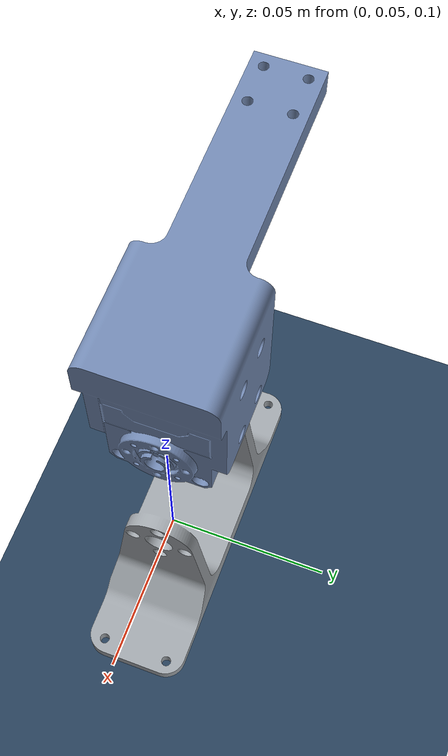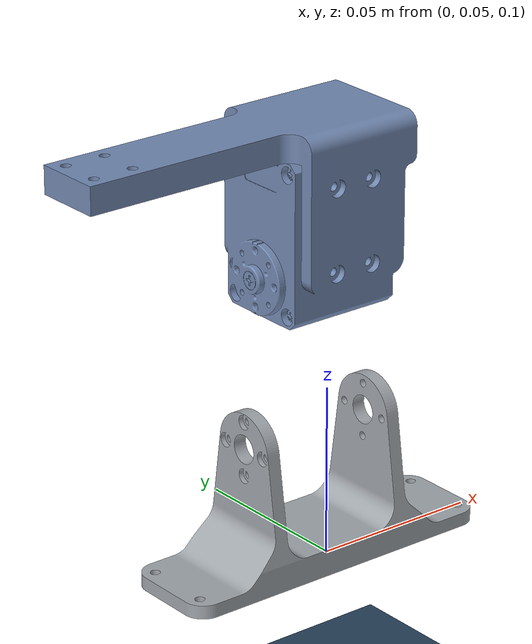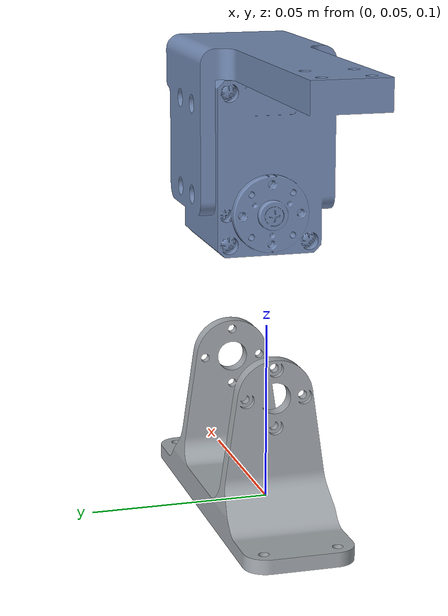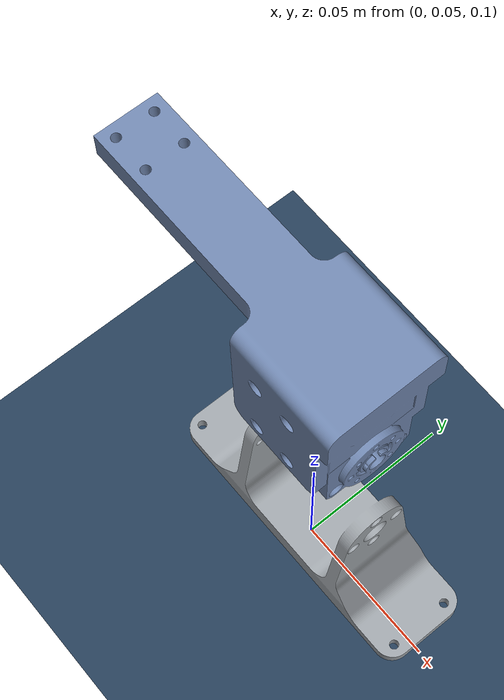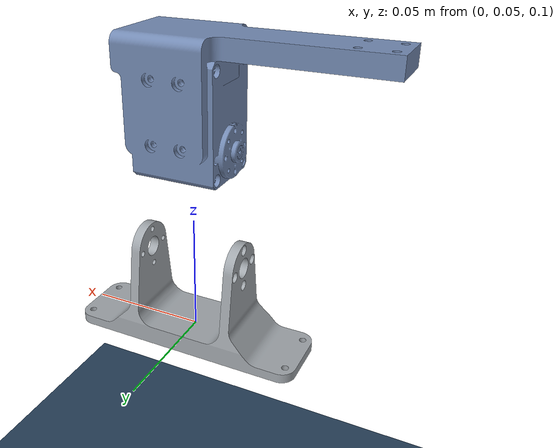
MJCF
<?xml version="1.0" ?>
<mujoco model="sysID_XC430_pos_fixed_scene">
  <include file="sysID_XC430_pos_fixed.xml"/>
  <statistic center="0 0 -0.05" extent="0.6"/>
  <visual>
    <headlight diffuse="0.6 0.6 0.6" ambient="0.3 0.3 0.3" specular="0 0 0"/>
    <rgba haze="0.15 0.25 0.35 1"/>
    <global azimuth="160" elevation="-20" offwidth="1280" offheight="720"/>
  </visual>
  <worldbody>
    <light pos="0 0 1.5" dir="0 0 -1" directional="true"/>
    <camera name="perspective" pos="0.7 -0.7 0.35" xyaxes="1 1 0 -1 1 3" mode="trackcom"/>
    <camera name="side" pos="0 -1 0.25" xyaxes="1 0 0 0 1 3" mode="trackcom"/>
    <camera name="top" pos="0 0 0.65" xyaxes="0 1 0 -1 0 0" mode="trackcom"/>
    <camera name="front" pos="1 0 0.25" xyaxes="0 1 0 -1 0 3" mode="trackcom"/>
    <geom name="floor" size="0 0 0.05" type="plane" material="groundplane" condim="3"/>
  </worldbody>
  <asset>
    <texture type="2d" name="groundplane" builtin="checker" mark="edge" rgb1="0.2 0.3 0.4" rgb2="0.1 0.2 0.3" markrgb="0.8 0.8 0.8" width="300" height="300"/>
    <material name="groundplane" texture="groundplane" texuniform="true" texrepeat="5 5" reflectance="0.0"/>
  </asset>
</mujoco>

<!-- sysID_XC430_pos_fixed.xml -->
<mujoco model="sysID_XC430">
  <compiler angle="radian" meshdir="assets" autolimits="true"/>
  <default>
    <default class="sysID_XC430">
      <joint frictionloss="0.1" armature="0.005"/>
      <position kp="50" dampratio="1"/>
      <default class="visual">
        <geom type="mesh" contype="0" conaffinity="0" group="2"/>
      </default>
      <default class="collision">
        <geom group="3"/>
      </default>
    </default>
  </default>
  <worldbody>
    <geom type="mesh" class="visual" pos="-0.00203224 0.055143 0.107941" quat="1 0 0 0" mesh="arm_430_visual" material="arm_430_visual_material"/>
    <geom type="mesh" class="collision" pos="-0.00203224 0.055143 0.107941" quat="1 0 0 0" mesh="arm_430_collision" material="arm_430_collision_material"/>
    <body name="mount_xc430" pos="-0.0210322 0.0551293 0.185732" quat="8.03486e-16 0.707107 -7.39059e-16 0.707107">
      <joint axis="0 0 1" name="joint_0" type="hinge" range="-1.5707963267948966 1.5707963267948966"/>
      <inertial pos="0.0159874 2.6384e-05 0.0159224" mass="0.08645" fullinertia="2.90617e-05 4.32421e-05 2.78359e-05 -5.09735e-08 5.74423e-06 3.95814e-08"/>
      <geom type="mesh" class="visual" pos="0.0159874 2.6384e-05 0.0159224" quat="8.03486e-16 -0.707107 8.31033e-16 -0.707107" mesh="mount_xc430_visual" material="mount_xc430_visual_material"/>
      <geom type="mesh" class="collision" pos="0.0159874 2.6384e-05 0.0159224" quat="8.03486e-16 -0.707107 8.31033e-16 -0.707107" mesh="mount_xc430_collision" material="mount_xc430_collision_material"/>
    </body>
  </worldbody>
  <asset>
    <mesh file="merged/arm_430_collision.stl"/>
    <mesh file="merged/mount_xc430_visual.stl"/>
    <mesh file="merged/mount_xc430_collision.stl"/>
    <mesh file="merged/arm_430_visual.stl"/>
    <material name="arm_430_visual_material" rgba="0.630593 0.65299 0.674189 1"/>
    <material name="arm_430_collision_material" rgba="0.630593 0.65299 0.674189 1"/>
    <material name="mount_xc430_visual_material" rgba="0.447865 0.537334 0.69801 1"/>
    <material name="mount_xc430_collision_material" rgba="0.447865 0.537334 0.69801 1"/>
  </asset>
  <actuator>
    <position class="sysID_XC430" name="joint_0" joint="joint_0" inheritrange="1"/>
  </actuator>
  <equality/>
</mujoco>
